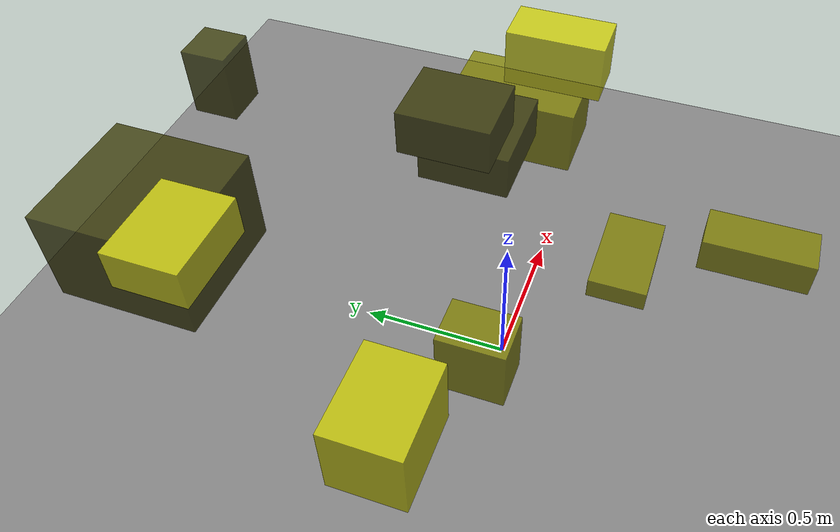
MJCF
<?xml version="1.0"?>
<mujoco model="obstacle_scene">
  <compiler angle="radian" coordinate="local"/>
  <option timestep="0.001" gravity="0 0 -9.81"/>

  <asset>
    <material name="obstacle_mat" rgba="0.8 0.8 0.0 0.8"/>
    <material name="ground_mat" rgba="0.5 0.5 0.5 1"/>
  </asset>

  <worldbody>
    <!-- Ground plane -->
    <geom name="ground" type="plane" size="3 3 0.1" material="ground_mat"/>

    <!-- Obstacles -->
    <body name="obstacle_0" pos="-0.558717 0.770856 0.899043">
      <geom name="obs_0" type="box" size="0.182803 0.192652 0.135411" rgba="0.2 0.2 0.0 0.8"/>
    </body>
    <body name="obstacle_1" pos="-0.375873 -0.032518 0.486536">
      <geom name="obs_1" type="box" size="0.075492 0.101761 0.108087" rgba="0.5 0.5 0.0 0.8"/>
    </body>
    <body name="obstacle_2" pos="0.627380 0.005552 0.567210">
      <geom name="obs_2" type="box" size="0.173976 0.064547 0.043582" rgba="0.8 0.8 0.0 0.8"/>
    </body>
    <body name="obstacle_3" pos="-0.196456 0.092941 1.143114">
      <geom name="obs_3" type="box" size="0.096279 0.117566 0.059310" rgba="0.2 0.2 0.0 0.8"/>
    </body>
    <body name="obstacle_4" pos="0.141609 -0.709793 0.615626">
      <geom name="obs_4" type="box" size="0.070442 0.157955 0.053758" rgba="0.5 0.5 0.0 0.8"/>
    </body>
    <body name="obstacle_5" pos="-0.671521 0.122729 0.478349">
      <geom name="obs_5" type="box" size="0.152765 0.118251 0.126003" rgba="0.8 0.8 0.0 0.8"/>
    </body>
    <body name="obstacle_6" pos="-0.238973 0.707630 1.157688">
      <geom name="obs_6" type="box" size="0.056670 0.057889 0.088918" rgba="0.2 0.2 0.0 0.8"/>
    </body>
    <body name="obstacle_7" pos="0.475015 -0.322378 0.091239">
      <geom name="obs_7" type="box" size="0.179519 0.104825 0.039212" rgba="0.5 0.5 0.0 0.8"/>
    </body>
    <body name="obstacle_8" pos="0.366950 -0.025746 0.991541">
      <geom name="obs_8" type="box" size="0.073033 0.143301 0.085111" rgba="0.8 0.8 0.0 0.8"/>
    </body>
    <body name="obstacle_9" pos="0.074900 0.122879 0.861216">
      <geom name="obs_9" type="box" size="0.142446 0.131061 0.065662" rgba="0.2 0.2 0.0 0.8"/>
    </body>
    <body name="obstacle_10" pos="0.490645 0.114943 0.656051">
      <geom name="obs_10" type="box" size="0.120166 0.203892 0.108326" rgba="0.5 0.5 0.0 0.8"/>
    </body>
    <body name="obstacle_11" pos="-0.679855 0.606167 1.015416">
      <geom name="obs_11" type="box" size="0.127203 0.099668 0.056477" rgba="0.8 0.8 0.0 0.8"/>
    </body>
  </worldbody>
</mujoco>
